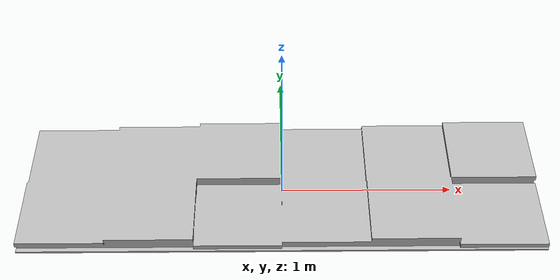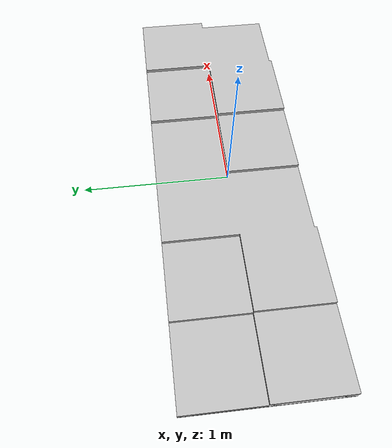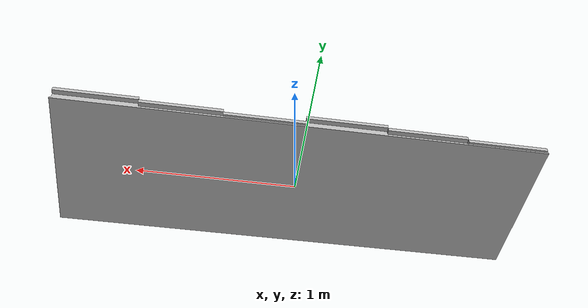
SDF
<?xml version="1.0"?>
<sdf version="1.5">
<model name="steps">
  <!-- Give the base link a unique name -->
  <link name="base">
    <pose>0 0 0 0 0 0</pose>
    <inertial>
      <pose>0 0 0 0 0 0</pose>
      <mass>77.2</mass>
      <inertia>
        <ixx>6.93</ixx>
        <ixy>0.45</ixy>
        <ixz>0.10</ixz>
        <iyy>57.67</iyy>
        <iyz>0</iyz>
        <izz>64.47</izz>
      </inertia>
    </inertial>
    <collision name="base_collision">
      <geometry>
        <mesh>
          <uri>model://steps/meshes/steps.stl</uri>
          <scale>1 1 1</scale>
        </mesh>
      </geometry>
    </collision>

    <!-- The visual is mostly a copy of the collision -->
    <visual name="base_visual">
      <!-- Offset the visual by have the base's height. We are not rotating
           mesh since symmetrical -->
      <geometry>
        <mesh>
              <uri>model://steps/meshes/steps.stl</uri>
        <scale>1 1 1</scale>
        </mesh>
      </geometry>
    </visual>
  </link>

</model>
</sdf>
